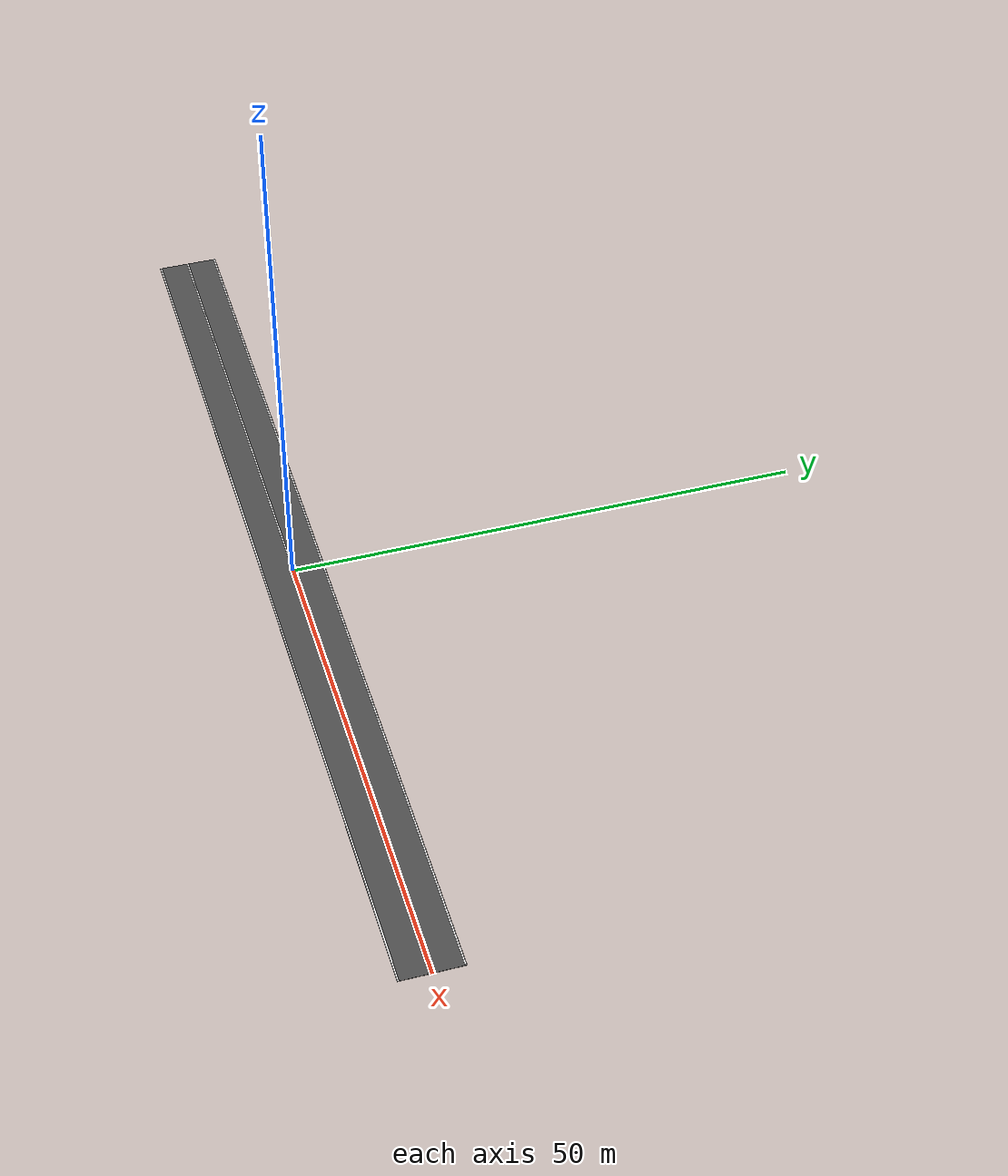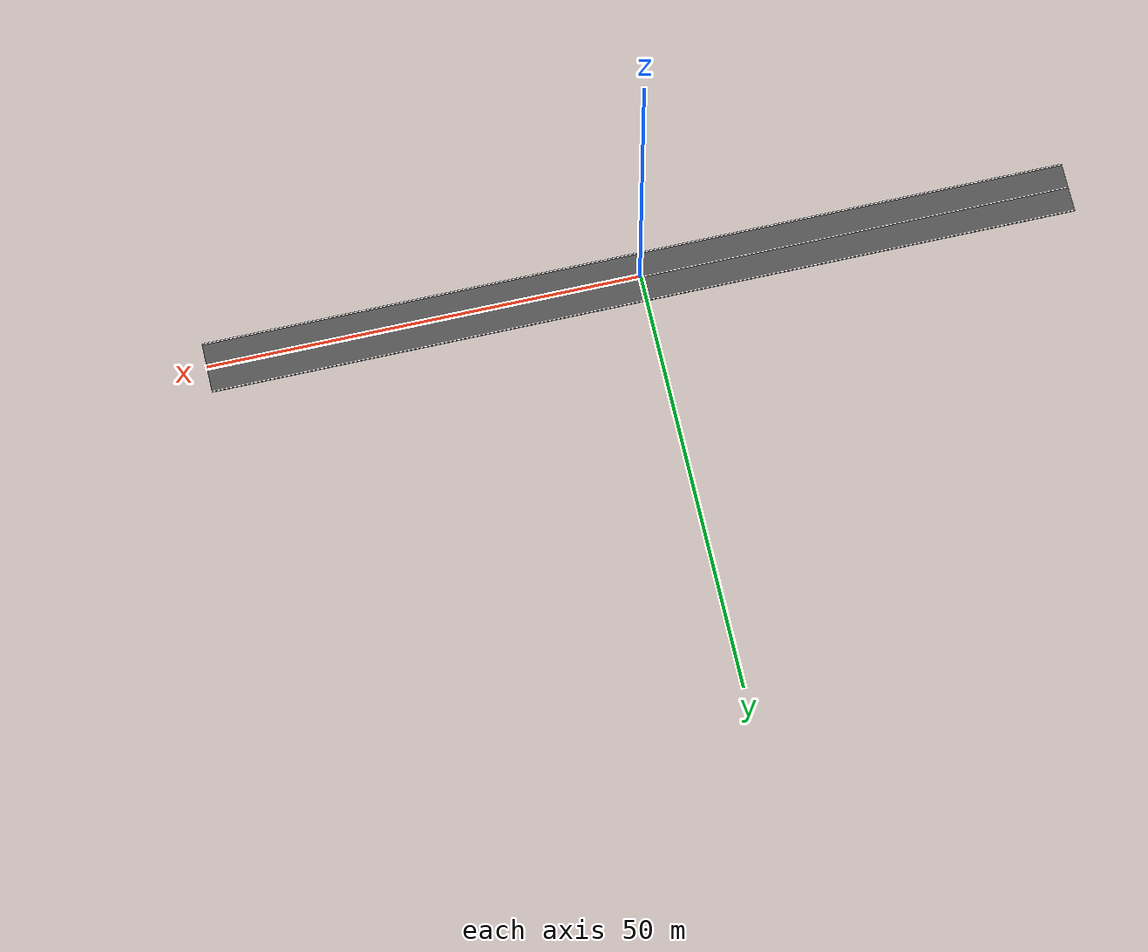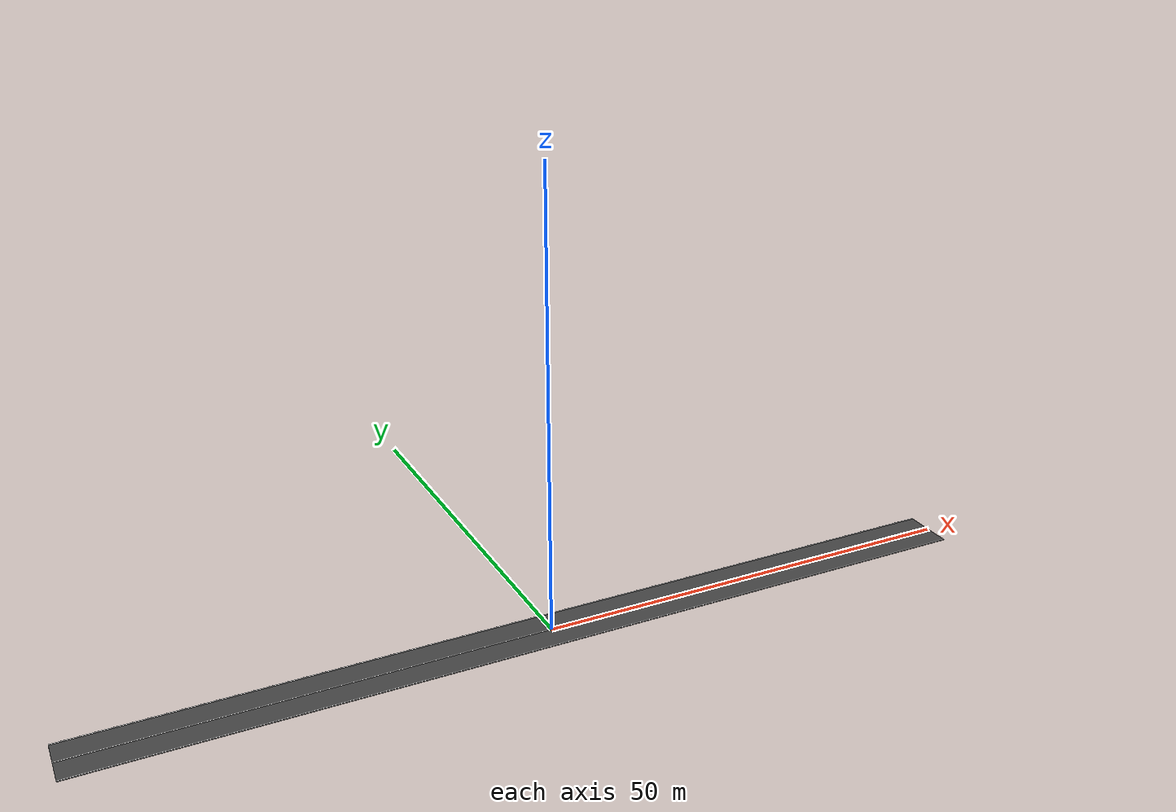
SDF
<?xml version="1.0" encoding="UTF-8"?>
<sdf version='1.9'>
  <model name='teknofest_runway'>
    <static>true</static>
    <link name='link'>
      <visual name='runway_surface'>
        <geometry>
          <box><size>100 6 0.05</size></box>
        </geometry>
        <material>
          <ambient>0.3 0.3 0.3 1</ambient>
          <diffuse>0.3 0.3 0.3 1</diffuse>
        </material>
      </visual>
      <!-- Center line dashes -->
      <visual name='center_line'>
        <pose>0 0 0.03 0 0 0</pose>
        <geometry>
          <box><size>100 0.15 0.01</size></box>
        </geometry>
        <material>
          <ambient>1 1 1 1</ambient>
          <diffuse>1 1 1 1</diffuse>
        </material>
      </visual>
      <!-- Edge lines -->
      <visual name='left_edge'>
        <pose>0 2.9 0.03 0 0 0</pose>
        <geometry>
          <box><size>100 0.15 0.01</size></box>
        </geometry>
        <material>
          <ambient>1 1 1 1</ambient>
          <diffuse>1 1 1 1</diffuse>
        </material>
      </visual>
      <visual name='right_edge'>
        <pose>0 -2.9 0.03 0 0 0</pose>
        <geometry>
          <box><size>100 0.15 0.01</size></box>
        </geometry>
        <material>
          <ambient>1 1 1 1</ambient>
          <diffuse>1 1 1 1</diffuse>
        </material>
      </visual>
      <collision name='collision'>
        <geometry>
          <box><size>100 6 0.05</size></box>
        </geometry>
        <surface>
          <friction>
            <ode><mu>0.8</mu><mu2>0.8</mu2></ode>
          </friction>
        </surface>
      </collision>
    </link>
  </model>
</sdf>
